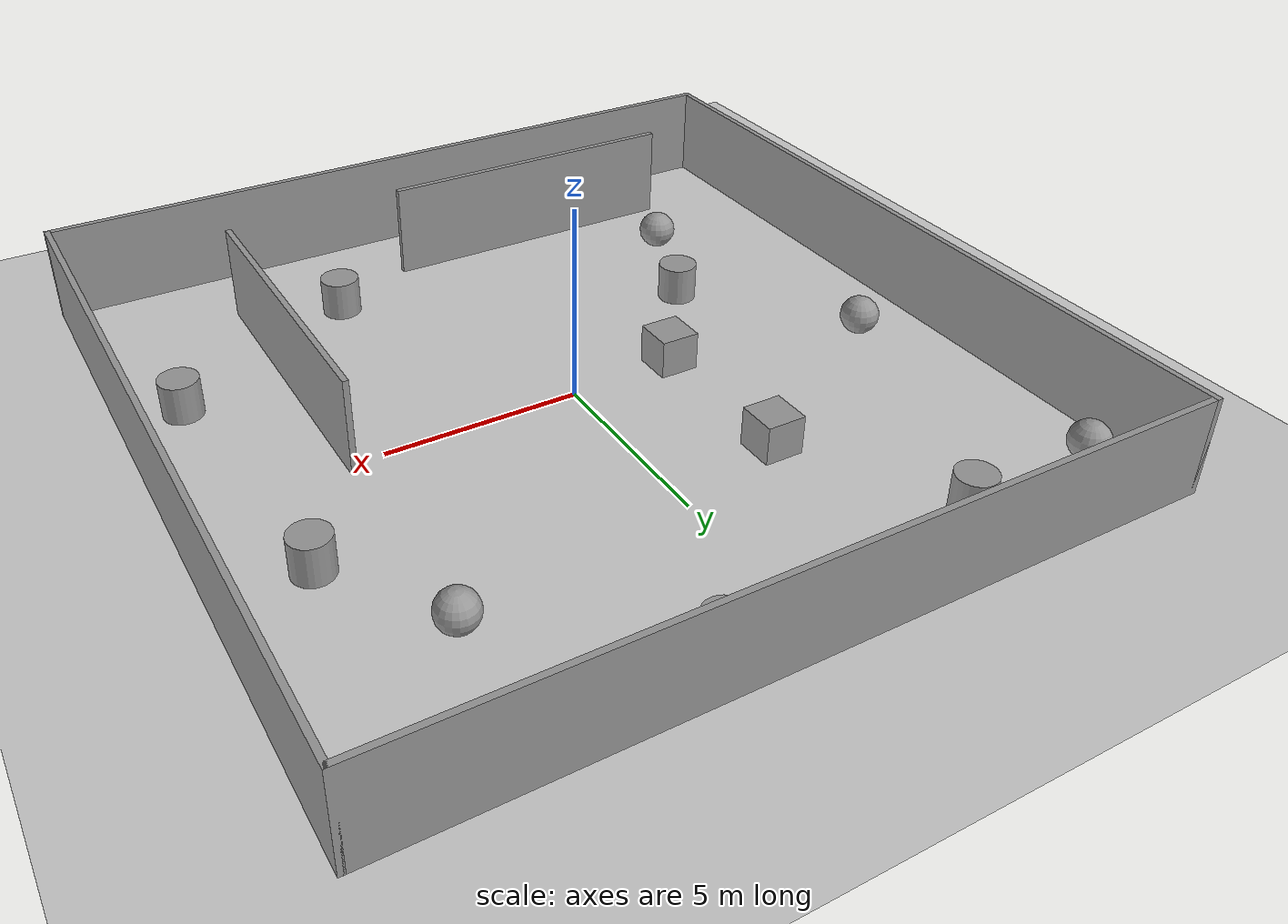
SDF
<sdf version="1.6">
 <world name="default">
  <light name="sun" type="directional">
   <pose>0 0 10 0 -0 0</pose>
   <diffuse>0.8 0.8 0.8 1</diffuse>
   <specular>0.2 0.2 0.2 1</specular>
   <attenuation>
    <range>1000</range>
    <constant>0.9</constant>
    <linear>0.01</linear>
    <quadratic>0.001</quadratic>
   </attenuation>
   <direction>-0.5 0.1 -0.9</direction>
  </light>
  <model name="ground_plane">
   <static>1</static>
   <link name="link">
    <collision name="collision">
     <geometry><plane><normal>0 0 1</normal><size>100 100</size></plane></geometry>
     <surface><friction><ode><mu>100</mu><mu2>50</mu2></ode></friction></surface>
    </collision>
    <visual name="visual">
     <cast_shadows>0</cast_shadows>
     <geometry><plane><normal>0 0 1</normal><size>100 100</size></plane></geometry>
     <material>
      <script><uri>file://media/materials/scripts/gazebo.material</uri><name>Gazebo/Grey</name></script>
     </material>
    </visual>
   </link>
  </model>
  <gravity>0 0 -9.8</gravity>
  <magnetic_field>6e-06 2.3e-05 -4.2e-05</magnetic_field>
  <atmosphere type="adiabatic"/>
  <physics name="default_physics" default="0" type="ode">
   <max_step_size>0.001</max_step_size>
   <real_time_factor>1</real_time_factor>
   <real_time_update_rate>1000</real_time_update_rate>
  </physics>
  <scene><ambient>0.4 0.4 0.4 1</ambient><background>0.7 0.7 0.7 1</background><shadows>1</shadows></scene>
  <spherical_coordinates>
   <surface_model>EARTH_WGS84</surface_model>
   <latitude_deg>0</latitude_deg>
   <longitude_deg>0</longitude_deg>
   <elevation>0</elevation>
   <heading_deg>0</heading_deg>
  </spherical_coordinates>
  <model name="unit_cylinder">
   <pose>-5.20997 8.11455 0.499994 3e-06 -3e-06 0</pose>
   <link name="link">
    <inertial>
     <mass>1</mass>
     <inertia><ixx>0.145833</ixx><ixy>0</ixy><ixz>0</ixz><iyy>0.145833</iyy><iyz>0</iyz><izz>0.125</izz></inertia>
    </inertial>
    <collision name="collision">
     <geometry><cylinder><radius>0.5</radius><length>1</length></cylinder></geometry>
    </collision>
    <visual name="visual">
     <geometry><cylinder><radius>0.5</radius><length>1</length></cylinder></geometry>
     <material>
      <script><name>Gazebo/Grey</name><uri>file://media/materials/scripts/gazebo.material</uri></script>
     </material>
    </visual>
   </link>
  </model>
  <model name="unit_sphere">
   <pose>5.98891 5.98533 0.5 0 -0 0</pose>
   <link name="link">
    <inertial>
     <mass>1</mass>
     <inertia><ixx>0.1</ixx><ixy>0</ixy><ixz>0</ixz><iyy>0.1</iyy><iyz>0</iyz><izz>0.1</izz></inertia>
    </inertial>
    <collision name="collision"><geometry><sphere><radius>0.5</radius></sphere></geometry></collision>
    <visual name="visual">
     <geometry><sphere><radius>0.5</radius></sphere></geometry>
     <material>
      <script><name>Gazebo/Grey</name><uri>file://media/materials/scripts/gazebo.material</uri></script>
     </material>
    </visual>
   </link>
  </model>
  <model name="unit_cylinder_0">
   <pose>-4.87987 -2.92007 0.499994 -4e-06 -2e-06 -0</pose>
   <link name="link">
    <inertial>
     <mass>1</mass>
     <inertia><ixx>0.145833</ixx><ixy>0</ixy><ixz>0</ixz><iyy>0.145833</iyy><iyz>0</iyz><izz>0.125</izz></inertia>
    </inertial>
    <collision name="collision">
     <geometry><cylinder><radius>0.5</radius><length>1</length></cylinder></geometry>
    </collision>
    <visual name="visual">
     <geometry><cylinder><radius>0.5</radius><length>1</length></cylinder></geometry>
     <material>
      <script><name>Gazebo/Grey</name><uri>file://media/materials/scripts/gazebo.material</uri></script>
     </material>
    </visual>
   </link>
  </model>
  <model name="unit_box">
   <pose>-2.8489 4.13792 0.5 0 0 -5e-06</pose>
   <link name="link">
    <inertial>
     <mass>1</mass>
     <inertia>
      <ixx>0.166667</ixx>
      <ixy>0</ixy>
      <ixz>0</ixz>
      <iyy>0.166667</iyy>
      <iyz>0</iyz>
      <izz>0.166667</izz>
     </inertia>
    </inertial>
    <collision name="collision"><geometry><box><size>1 1 1</size></box></geometry></collision>
    <visual name="visual">
     <geometry><box><size>1 1 1</size></box></geometry>
     <material>
      <script><name>Gazebo/Grey</name><uri>file://media/materials/scripts/gazebo.material</uri></script>
     </material>
    </visual>
   </link>
  </model>
  <model name="unit_sphere_0">
   <pose>-7.99018 1.02119 0.5 0 -0 0</pose>
   <link name="link">
    <inertial>
     <mass>1</mass>
     <inertia><ixx>0.1</ixx><ixy>0</ixy><ixz>0</ixz><iyy>0.1</iyy><iyz>0</iyz><izz>0.1</izz></inertia>
    </inertial>
    <collision name="collision"><geometry><sphere><radius>0.5</radius></sphere></geometry></collision>
    <visual name="visual">
     <geometry><sphere><radius>0.5</radius></sphere></geometry>
     <material>
      <script><name>Gazebo/Grey</name><uri>file://media/materials/scripts/gazebo.material</uri></script>
     </material>
    </visual>
   </link>
  </model>
  <model name="test_9">
   <pose>5.86837 -3.76831 0 0 -0 0</pose>
   <link name="Wall_6">
    <collision name="Wall_6_Collision">
     <geometry><box><size>8.25 0.15 2.5</size></box></geometry>
     <pose>0 0 1.25 0 -0 0</pose>
    </collision>
    <visual name="Wall_6_Visual">
     <pose>0 0 1.25 0 -0 0</pose>
     <geometry><box><size>8.25 0.15 2.5</size></box></geometry>
     <material>
      <script><uri>file://media/materials/scripts/gazebo.material</uri><name>Gazebo/Grey</name></script>
      <ambient>1 1 1 1</ambient>
     </material>
     <meta><layer>0</layer></meta>
    </visual>
    <pose>0 -0 0 0 -0 -1.5708</pose>
   </link>
   <static>1</static>
  </model>
  <model name="test_10">
   <pose>-3.02325 -7.93996 0 0 -0 0</pose>
   <link name="Wall_13">
    <collision name="Wall_13_Collision">
     <geometry><box><size>8.25 0.15 2.5</size></box></geometry>
     <pose>0 0 1.25 0 -0 0</pose>
    </collision>
    <visual name="Wall_13_Visual">
     <pose>0 0 1.25 0 -0 0</pose>
     <geometry><box><size>8.25 0.15 2.5</size></box></geometry>
     <material>
      <script><uri>file://media/materials/scripts/gazebo.material</uri><name>Gazebo/Grey</name></script>
      <ambient>1 1 1 1</ambient>
     </material>
     <meta><layer>0</layer></meta>
    </visual>
    <pose>0 0 0 0 -0 3.14159</pose>
   </link>
   <static>1</static>
  </model>
  <model name="unit_cylinder_1">
   <pose>1.89481 9.00743 0.499998 3e-06 -2e-06 0</pose>
   <link name="link">
    <inertial>
     <mass>1</mass>
     <inertia><ixx>0.145833</ixx><ixy>0</ixy><ixz>0</ixz><iyy>0.145833</iyy><iyz>0</iyz><izz>0.125</izz></inertia>
    </inertial>
    <collision name="collision">
     <geometry><cylinder><radius>0.5</radius><length>1</length></cylinder></geometry>
    </collision>
    <visual name="visual">
     <geometry><cylinder><radius>0.5</radius><length>1</length></cylinder></geometry>
     <material>
      <script><name>Gazebo/Grey</name><uri>file://media/materials/scripts/gazebo.material</uri></script>
     </material>
    </visual>
   </link>
  </model>
  <model name="unit_cylinder_2">
   <pose>3.41515 -6.69194 0.499992 -3e-06 2e-06 0</pose>
   <link name="link">
    <inertial>
     <mass>1</mass>
     <inertia><ixx>0.145833</ixx><ixy>0</ixy><ixz>0</ixz><iyy>0.145833</iyy><iyz>0</iyz><izz>0.125</izz></inertia>
    </inertial>
    <collision name="collision">
     <geometry><cylinder><radius>0.5</radius><length>1</length></cylinder></geometry>
    </collision>
    <visual name="visual">
     <geometry><cylinder><radius>0.5</radius><length>1</length></cylinder></geometry>
     <material>
      <script><name>Gazebo/Grey</name><uri>file://media/materials/scripts/gazebo.material</uri></script>
     </material>
    </visual>
   </link>
  </model>
  <model name="unit_cylinder_3">
   <pose>7.83068 3.0299 0.499998 3e-06 -2e-06 0</pose>
   <link name="link">
    <inertial>
     <mass>1</mass>
     <inertia><ixx>0.145833</ixx><ixy>0</ixy><ixz>0</ixz><iyy>0.145833</iyy><iyz>0</iyz><izz>0.125</izz></inertia>
    </inertial>
    <collision name="collision">
     <geometry><cylinder><radius>0.5</radius><length>1</length></cylinder></geometry>
    </collision>
    <visual name="visual">
     <geometry><cylinder><radius>0.5</radius><length>1</length></cylinder></geometry>
     <material>
      <script><name>Gazebo/Grey</name><uri>file://media/materials/scripts/gazebo.material</uri></script>
     </material>
    </visual>
   </link>
  </model>
  <model name="human_5_collision_model">
   <pose>1.97885 3 1.01878 1.57013 -0.099356 3.13904</pose>
   <static>1</static>
   <link name="link">
    <collision name="link">
     <pose>0 -0.18 0.05 3.14159 -1.57079 3.14159</pose>
     <geometry><box><size>0.44 1.62 0.6</size></box></geometry>
    </collision>
   </link>
  </model>
  <model name="human_6_collision_model">
   <pose>1.02115 -2 1.01878 1.57013 -0.099356 -0.002557</pose>
   <static>1</static>
   <link name="link">
    <collision name="link">
     <pose>0 -0.18 0.05 3.14159 -1.57079 3.14159</pose>
     <geometry><box><size>0.44 1.62 0.6</size></box></geometry>
    </collision>
   </link>
  </model>
  <model name="human_7_collision_model">
   <pose>2.52115 -0.5 1.01878 1.57013 -0.099356 -0.002557</pose>
   <static>1</static>
   <link name="link">
    <collision name="link">
     <pose>0 -0.18 0.05 3.14159 -1.57079 3.14159</pose>
     <geometry><box><size>0.44 1.62 0.6</size></box></geometry>
    </collision>
   </link>
  </model>
  <model name="human_8_collision_model">
   <pose>-5 1.02115 1.01878 1.57013 -0.099356 1.56824</pose>
   <static>1</static>
   <link name="link">
    <collision name="link">
     <pose>0 -0.18 0.05 3.14159 -1.57079 3.14159</pose>
     <geometry><box><size>0.44 1.62 0.6</size></box></geometry>
    </collision>
   </link>
  </model>
  <model name="human_9_collision_model">
   <pose>5.47885 1.5 1.01878 1.57013 -0.099356 3.13904</pose>
   <static>1</static>
   <link name="link">
    <collision name="link">
     <pose>0 -0.18 0.05 3.14159 -1.57079 3.14159</pose>
     <geometry><box><size>0.44 1.62 0.6</size></box></geometry>
    </collision>
   </link>
  </model>
  <model name="human_10_collision_model">
   <pose>3.5 -2.52115 1.01878 1.57013 -0.099356 -1.57335</pose>
   <static>1</static>
   <link name="link">
    <collision name="link">
     <pose>0 -0.18 0.05 3.14159 -1.57079 3.14159</pose>
     <geometry><box><size>0.44 1.62 0.6</size></box></geometry>
    </collision>
   </link>
  </model>
  <model name="human_11_collision_model">
   <pose>1 -4.02115 1.01878 1.57013 -0.099356 -1.57335</pose>
   <static>1</static>
   <link name="link">
    <collision name="link">
     <pose>0 -0.18 0.05 3.14159 -1.57079 3.14159</pose>
     <geometry><box><size>0.44 1.62 0.6</size></box></geometry>
    </collision>
   </link>
  </model>
  <model name="human_13_collision_model">
   <pose>-3 -6.02115 1.01878 1.57013 -0.099356 -1.57335</pose>
   <static>1</static>
   <link name="link">
    <collision name="link">
     <pose>0 -0.18 0.05 3.14159 -1.57079 3.14159</pose>
     <geometry><box><size>0.44 1.62 0.6</size></box></geometry>
    </collision>
   </link>
  </model>
  <model name="human_14_collision_model">
   <pose>3.5 1.47885 1.01878 1.57013 -0.099356 -1.57335</pose>
   <static>1</static>
   <link name="link">
    <collision name="link">
     <pose>0 -0.18 0.05 3.14159 -1.57079 3.14159</pose>
     <geometry><box><size>0.44 1.62 0.6</size></box></geometry>
    </collision>
   </link>
  </model>
  <model name="human_15_collision_model">
   <pose>-3 6.97885 1.01878 1.57013 -0.099356 -1.57335</pose>
   <static>1</static>
   <link name="link">
    <collision name="link">
     <pose>0 -0.18 0.05 3.14159 -1.57079 3.14159</pose>
     <geometry><box><size>0.44 1.62 0.6</size></box></geometry>
    </collision>
   </link>
  </model>
  <model name="human_16_collision_model">
   <pose>0.021151 3 1.01878 1.57013 -0.099356 -0.002557</pose>
   <static>1</static>
   <link name="link">
    <collision name="link">
     <pose>0 -0.18 0.05 3.14159 -1.57079 3.14159</pose>
     <geometry><box><size>0.44 1.62 0.6</size></box></geometry>
    </collision>
   </link>
  </model>
  <model name="human_17_collision_model">
   <pose>3.47885 4.5 1.01878 1.57013 -0.099356 3.13904</pose>
   <static>1</static>
   <link name="link">
    <collision name="link">
     <pose>0 -0.18 0.05 3.14159 -1.57079 3.14159</pose>
     <geometry><box><size>0.44 1.62 0.6</size></box></geometry>
    </collision>
   </link>
  </model>
  <model name="human_19_collision_model">
   <pose>8.47885 5.5 1.01878 1.57013 -0.099356 3.13904</pose>
   <static>1</static>
   <link name="link">
    <collision name="link">
     <pose>0 -0.18 0.05 3.14159 -1.57079 3.14159</pose>
     <geometry><box><size>0.44 1.62 0.6</size></box></geometry>
    </collision>
   </link>
  </model>
  <model name="human_20_collision_model">
   <pose>-7.97885 -5 1.01878 1.57013 -0.099356 -0.002557</pose>
   <static>1</static>
   <link name="link">
    <collision name="link">
     <pose>0 -0.18 0.05 3.14159 -1.57079 3.14159</pose>
     <geometry><box><size>0.44 1.62 0.6</size></box></geometry>
    </collision>
   </link>
  </model>
  <model name="human_21_collision_model">
   <pose>-7 4.97885 1.01878 1.57013 -0.099356 -1.57335</pose>
   <static>1</static>
   <link name="link">
    <collision name="link">
     <pose>0 -0.18 0.05 3.14159 -1.57079 3.14159</pose>
     <geometry><box><size>0.44 1.62 0.6</size></box></geometry>
    </collision>
   </link>
  </model>
  <model name="human_22_collision_model">
   <pose>9 -9.02115 1.01878 1.57013 -0.099356 -1.57335</pose>
   <static>1</static>
   <link name="link">
    <collision name="link">
     <pose>0 -0.18 0.05 3.14159 -1.57079 3.14159</pose>
     <geometry><box><size>0.44 1.62 0.6</size></box></geometry>
    </collision>
   </link>
  </model>
  <model name="human_23_collision_model">
   <pose>7.5 8.47885 1.01878 1.57013 -0.099356 -1.57335</pose>
   <static>1</static>
   <link name="link">
    <collision name="link">
     <pose>0 -0.18 0.05 3.14159 -1.57079 3.14159</pose>
     <geometry><box><size>0.44 1.62 0.6</size></box></geometry>
    </collision>
   </link>
  </model>
  <model name="unit_box_0">
   <pose>-2.77573 -0.076412 0.5 0 -0 0</pose>
   <link name="link">
    <inertial>
     <mass>1</mass>
     <inertia>
      <ixx>0.166667</ixx>
      <ixy>0</ixy>
      <ixz>0</ixz>
      <iyy>0.166667</iyy>
      <iyz>0</iyz>
      <izz>0.166667</izz>
     </inertia>
    </inertial>
    <collision name="collision"><geometry><box><size>1 1 1</size></box></geometry></collision>
    <visual name="visual">
     <geometry><box><size>1 1 1</size></box></geometry>
     <material>
      <script><name>Gazebo/Grey</name><uri>file://media/materials/scripts/gazebo.material</uri></script>
     </material>
    </visual>
   </link>
  </model>
  <model name="unit_cylinder_4">
   <pose>8.52929 -3.92073 0.499997 4e-06 3e-06 -0</pose>
   <link name="link">
    <inertial>
     <mass>1</mass>
     <inertia><ixx>0.145833</ixx><ixy>0</ixy><ixz>0</ixz><iyy>0.145833</iyy><iyz>0</iyz><izz>0.125</izz></inertia>
    </inertial>
    <collision name="collision">
     <geometry><cylinder><radius>0.5</radius><length>1</length></cylinder></geometry>
    </collision>
    <visual name="visual">
     <geometry><cylinder><radius>0.5</radius><length>1</length></cylinder></geometry>
     <material>
      <script><name>Gazebo/Grey</name><uri>file://media/materials/scripts/gazebo.material</uri></script>
     </material>
    </visual>
   </link>
  </model>
  <model name="unit_sphere_1">
   <pose>-8.85011 7.99171 0.5 0 -0 0</pose>
   <link name="link">
    <inertial>
     <mass>1</mass>
     <inertia><ixx>0.1</ixx><ixy>0</ixy><ixz>0</ixz><iyy>0.1</iyy><iyz>0</iyz><izz>0.1</izz></inertia>
    </inertial>
    <collision name="collision"><geometry><sphere><radius>0.5</radius></sphere></geometry></collision>
    <visual name="visual">
     <geometry><sphere><radius>0.5</radius></sphere></geometry>
     <material>
      <script><name>Gazebo/Grey</name><uri>file://media/materials/scripts/gazebo.material</uri></script>
     </material>
    </visual>
   </link>
  </model>
  <model name="unit_sphere_2">
   <pose>4.91529 8.99631 0.5 0 -0 0</pose>
   <link name="link">
    <inertial>
     <mass>1</mass>
     <inertia><ixx>0.1</ixx><ixy>0</ixy><ixz>0</ixz><iyy>0.1</iyy><iyz>0</iyz><izz>0.1</izz></inertia>
    </inertial>
    <collision name="collision"><geometry><sphere><radius>0.5</radius></sphere></geometry></collision>
    <visual name="visual">
     <geometry><sphere><radius>0.5</radius></sphere></geometry>
     <material>
      <script><name>Gazebo/Grey</name><uri>file://media/materials/scripts/gazebo.material</uri></script>
     </material>
    </visual>
   </link>
  </model>
  <model name="unit_sphere_3">
   <pose>-6.05439 -5.76844 0.5 0 -0 0</pose>
   <link name="link">
    <inertial>
     <mass>1</mass>
     <inertia><ixx>0.1</ixx><ixy>0</ixy><ixz>0</ixz><iyy>0.1</iyy><iyz>0</iyz><izz>0.1</izz></inertia>
    </inertial>
    <collision name="collision"><geometry><sphere><radius>0.5</radius></sphere></geometry></collision>
    <visual name="visual">
     <geometry><sphere><radius>0.5</radius></sphere></geometry>
     <material>
      <script><name>Gazebo/Grey</name><uri>file://media/materials/scripts/gazebo.material</uri></script>
     </material>
    </visual>
   </link>
  </model>
  <model name="wall_1">
   <pose>0.057753 -0.029263 0 0 -0 0</pose>
   <link name="Wall_10">
    <collision name="Wall_10_Collision">
     <geometry><box><size>20.25 0.15 2.5</size></box></geometry>
     <pose>0 0 1.25 0 -0 0</pose>
    </collision>
    <visual name="Wall_10_Visual">
     <pose>0 0 1.25 0 -0 0</pose>
     <geometry><box><size>20.25 0.15 2.5</size></box></geometry>
     <material>
      <script><uri>file://media/materials/scripts/gazebo.material</uri><name>Gazebo/Grey</name></script>
      <ambient>1 1 1 1</ambient>
     </material>
     <meta><layer>0</layer></meta>
    </visual>
    <pose>9.925 0 0 0 -0 -1.5708</pose>
   </link>
   <link name="Wall_11">
    <collision name="Wall_11_Collision">
     <geometry><box><size>20 0.15 2.5</size></box></geometry>
     <pose>0 0 1.25 0 -0 0</pose>
    </collision>
    <visual name="Wall_11_Visual">
     <pose>0 0 1.25 0 -0 0</pose>
     <geometry><box><size>20 0.15 2.5</size></box></geometry>
     <material>
      <script><uri>file://media/materials/scripts/gazebo.material</uri><name>Gazebo/Grey</name></script>
      <ambient>1 1 1 1</ambient>
     </material>
     <meta><layer>0</layer></meta>
    </visual>
    <pose>0 -10.05 0 0 -0 3.14159</pose>
   </link>
   <link name="Wall_12">
    <collision name="Wall_12_Collision">
     <geometry><box><size>20.25 0.15 2.5</size></box></geometry>
     <pose>0 0 1.25 0 -0 0</pose>
    </collision>
    <visual name="Wall_12_Visual">
     <pose>0 0 1.25 0 -0 0</pose>
     <geometry><box><size>20.25 0.15 2.5</size></box></geometry>
     <material>
      <script><uri>file://media/materials/scripts/gazebo.material</uri><name>Gazebo/Grey</name></script>
      <ambient>1 1 1 1</ambient>
     </material>
     <meta><layer>0</layer></meta>
    </visual>
    <pose>-9.925 0 0 0 -0 1.5708</pose>
   </link>
   <link name="Wall_9">
    <collision name="Wall_9_Collision">
     <geometry><box><size>20 0.15 2.5</size></box></geometry>
     <pose>0 0 1.25 0 -0 0</pose>
    </collision>
    <visual name="Wall_9_Visual">
     <pose>0 0 1.25 0 -0 0</pose>
     <geometry><box><size>20 0.15 2.5</size></box></geometry>
     <material>
      <script><uri>file://media/materials/scripts/gazebo.material</uri><name>Gazebo/Grey</name></script>
      <ambient>1 1 1 1</ambient>
     </material>
     <meta><layer>0</layer></meta>
    </visual>
    <pose>0 10.05 0 0 -0 0</pose>
   </link>
   <static>1</static>
  </model>
 </world>
</sdf>
